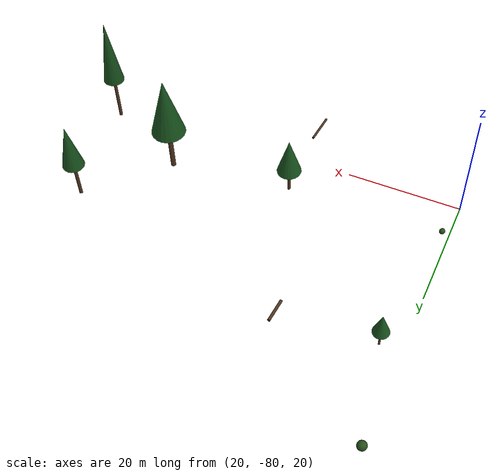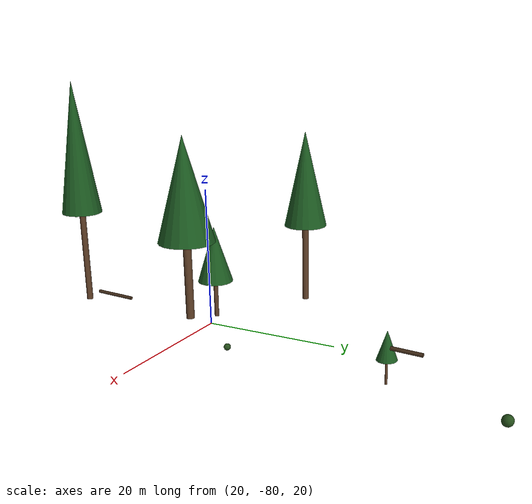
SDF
<sdf version="1.9">
 <world name="blue_mountains">
  <model name="spawn_tree_004">
   <static>true</static>
   <pose>68.9 -57.7 42.82 0 0 4.49</pose>
   <link name="trunk">
    <pose>0 0 4.15 0 0 0</pose>
    <collision name="c">
     <geometry><cylinder><radius>0.22</radius><length>8.3</length></cylinder></geometry>
    </collision>
    <visual name="v">
     <geometry><cylinder><radius>0.22</radius><length>8.3</length></cylinder></geometry>
     <material><ambient>0.30 0.20 0.12 1</ambient><diffuse>0.35 0.23 0.14 1</diffuse></material>
    </visual>
   </link>
   <link name="canopy">
    <pose>0 0 11.433333333333334 0 0 0</pose>
    <collision name="c"><geometry><cone><radius>1.43</radius><length>9.4</length></cone></geometry></collision>
    <visual name="v">
     <geometry><cone><radius>1.43</radius><length>9.4</length></cone></geometry>
     <material><ambient>0.08 0.28 0.10 1</ambient><diffuse>0.10 0.34 0.12 1</diffuse></material>
    </visual>
   </link>
  </model>
  <model name="spawn_tree_010">
   <static>true</static>
   <pose>59.4 -55.3 38.43 0 0 0.36</pose>
   <link name="trunk">
    <pose>0 0 4.15 0 0 0</pose>
    <collision name="c">
     <geometry><cylinder><radius>0.35</radius><length>8.3</length></cylinder></geometry>
    </collision>
    <visual name="v">
     <geometry><cylinder><radius>0.35</radius><length>8.3</length></cylinder></geometry>
     <material><ambient>0.30 0.20 0.12 1</ambient><diffuse>0.35 0.23 0.14 1</diffuse></material>
    </visual>
   </link>
   <link name="canopy">
    <pose>0 0 11.266666666666667 0 0 0</pose>
    <collision name="c"><geometry><cone><radius>2.44</radius><length>8.9</length></cone></geometry></collision>
    <visual name="v">
     <geometry><cone><radius>2.44</radius><length>8.9</length></cone></geometry>
     <material><ambient>0.08 0.28 0.10 1</ambient><diffuse>0.10 0.34 0.12 1</diffuse></material>
    </visual>
   </link>
  </model>
  <model name="spawn_tree_011">
   <static>true</static>
   <pose>44.1 -62.8 32.21 0 0 2.2</pose>
   <link name="trunk">
    <pose>0 0 2.5 0 0 0</pose>
    <collision name="c">
     <geometry><cylinder><radius>0.23</radius><length>5.0</length></cylinder></geometry>
    </collision>
    <visual name="v">
     <geometry><cylinder><radius>0.23</radius><length>5.0</length></cylinder></geometry>
     <material><ambient>0.30 0.20 0.12 1</ambient><diffuse>0.35 0.23 0.14 1</diffuse></material>
    </visual>
   </link>
   <link name="canopy">
    <pose>0 0 6.966666666666667 0 0 0</pose>
    <collision name="c"><geometry><cone><radius>1.86</radius><length>5.9</length></cone></geometry></collision>
    <visual name="v">
     <geometry><cone><radius>1.86</radius><length>5.9</length></cone></geometry>
     <material><ambient>0.08 0.28 0.10 1</ambient><diffuse>0.10 0.34 0.12 1</diffuse></material>
    </visual>
   </link>
  </model>
  <model name="spawn_tree_018">
   <static>true</static>
   <pose>23.9 -50.7 18.00 0 0 0.08</pose>
   <link name="trunk">
    <pose>0 0 2.05 0 0 0</pose>
    <collision name="c">
     <geometry><cylinder><radius>0.17</radius><length>4.1</length></cylinder></geometry>
    </collision>
    <visual name="v">
     <geometry><cylinder><radius>0.17</radius><length>4.1</length></cylinder></geometry>
     <material><ambient>0.30 0.20 0.12 1</ambient><diffuse>0.35 0.23 0.14 1</diffuse></material>
    </visual>
   </link>
   <link name="canopy">
    <pose>0 0 5.433333333333333 0 0 0</pose>
    <collision name="c"><geometry><cone><radius>1.4</radius><length>4.0</length></cone></geometry></collision>
    <visual name="v">
     <geometry><cone><radius>1.4</radius><length>4.0</length></cone></geometry>
     <material><ambient>0.08 0.28 0.10 1</ambient><diffuse>0.10 0.34 0.12 1</diffuse></material>
    </visual>
   </link>
  </model>
  <model name="spawn_tree_026">
   <static>true</static>
   <pose>65.2 -41.1 44.31 0 0 3.79</pose>
   <link name="trunk">
    <pose>0 0 3.2 0 0 0</pose>
    <collision name="c">
     <geometry><cylinder><radius>0.22</radius><length>6.4</length></cylinder></geometry>
    </collision>
    <visual name="v">
     <geometry><cylinder><radius>0.22</radius><length>6.4</length></cylinder></geometry>
     <material><ambient>0.30 0.20 0.12 1</ambient><diffuse>0.35 0.23 0.14 1</diffuse></material>
    </visual>
   </link>
   <link name="canopy">
    <pose>0 0 8.533333333333333 0 0 0</pose>
    <collision name="c"><geometry><cone><radius>1.45</radius><length>6.4</length></cone></geometry></collision>
    <visual name="v">
     <geometry><cone><radius>1.45</radius><length>6.4</length></cone></geometry>
     <material><ambient>0.08 0.28 0.10 1</ambient><diffuse>0.10 0.34 0.12 1</diffuse></material>
    </visual>
   </link>
  </model>
  <model name="spawn_bush_014">
   <static>true</static>
   <pose>20.8 -35.4 14.9 0 0 5.22</pose>
   <link name="foliage">
    <collision name="c"><geometry><sphere><radius>0.83</radius></sphere></geometry></collision>
    <visual name="v">
     <geometry><sphere><radius>0.83</radius></sphere></geometry>
     <material><ambient>0.10 0.24 0.08 1</ambient><diffuse>0.14 0.30 0.10 1</diffuse></material>
    </visual>
   </link>
  </model>
  <model name="spawn_bush_016">
   <static>true</static>
   <pose>21.6 -76.3 17.51 0 0 1.56</pose>
   <link name="foliage">
    <collision name="c"><geometry><sphere><radius>0.51</radius></sphere></geometry></collision>
    <visual name="v">
     <geometry><sphere><radius>0.51</radius></sphere></geometry>
     <material><ambient>0.10 0.24 0.08 1</ambient><diffuse>0.14 0.30 0.10 1</diffuse></material>
    </visual>
   </link>
  </model>
  <model name="spawn_log_010">
   <static>true</static>
   <pose>44.5 -76.4 32.64 1.5708 0 3.07</pose>
   <link name="log">
    <collision name="c">
     <geometry><cylinder><radius>0.18</radius><length>4.87</length></cylinder></geometry>
    </collision>
    <visual name="v">
     <geometry><cylinder><radius>0.18</radius><length>4.87</length></cylinder></geometry>
     <material><ambient>0.22 0.15 0.09 1</ambient><diffuse>0.28 0.19 0.11 1</diffuse></material>
    </visual>
   </link>
  </model>
  <model name="spawn_log_012">
   <static>true</static>
   <pose>37.8 -43.1 29.31 1.5708 0 6.21</pose>
   <link name="log">
    <collision name="c">
     <geometry><cylinder><radius>0.23</radius><length>3.77</length></cylinder></geometry>
    </collision>
    <visual name="v">
     <geometry><cylinder><radius>0.23</radius><length>3.77</length></cylinder></geometry>
     <material><ambient>0.22 0.15 0.09 1</ambient><diffuse>0.28 0.19 0.11 1</diffuse></material>
    </visual>
   </link>
  </model>
 </world>
</sdf>
